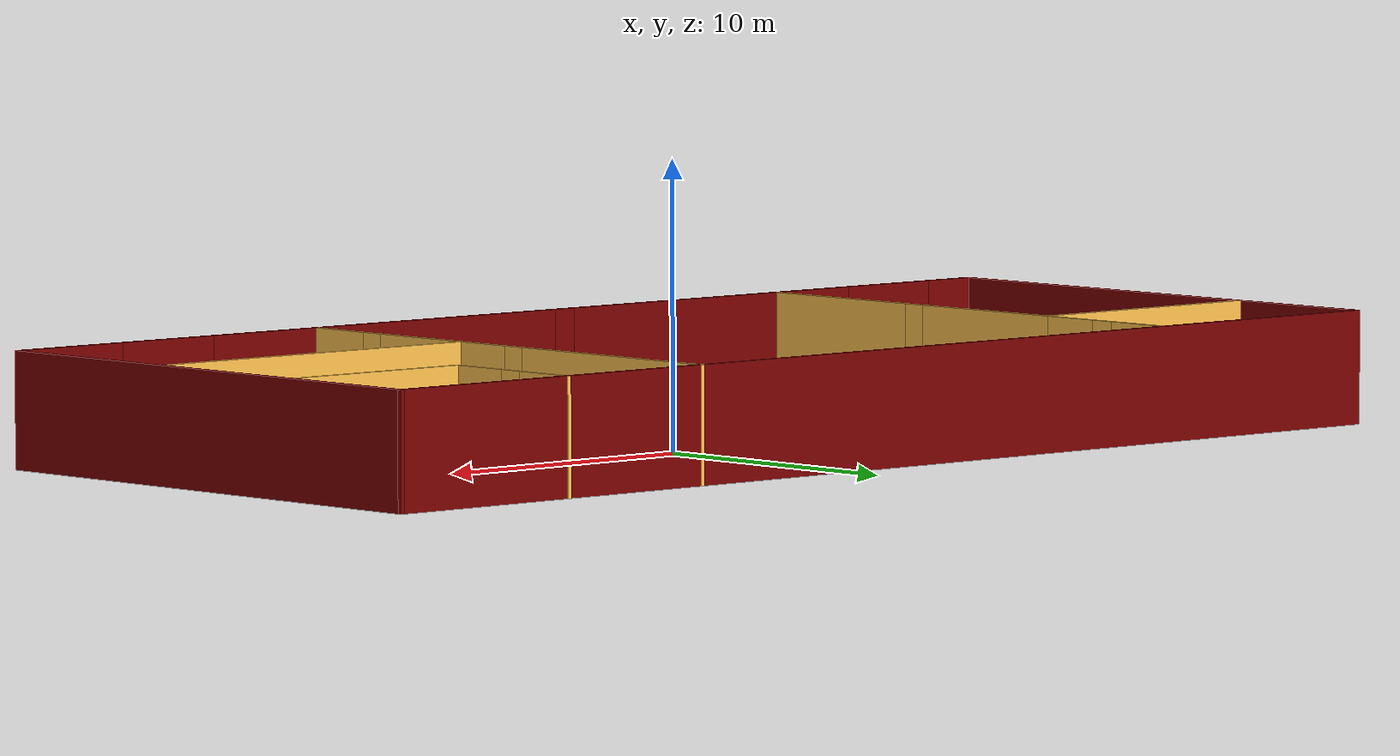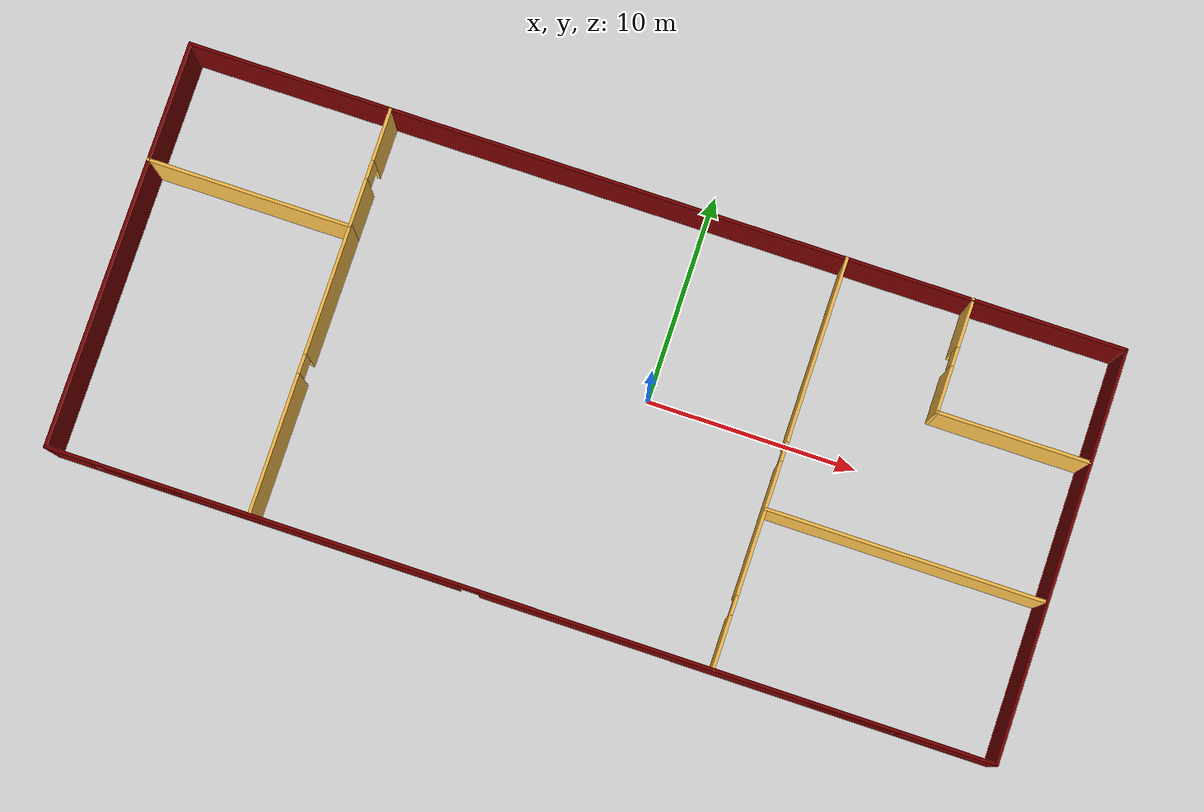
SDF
<?xml version='1.0'?>
<sdf version='1.6'>
  <model name='Building'>
    <pose frame=''>-2.517 -1.189 0 0 -0 0</pose>
    <link name='Wall_0'>
      <collision name='Wall_0_Collision'>
        <geometry>
          <box>
            <size>19.5 0.15 4</size>
          </box>
        </geometry>
        <pose frame=''>0 0 2 0 -0 0</pose>
      </collision>
      <visual name='Wall_0_Visual'>
        <pose frame=''>0 0 2 0 -0 0</pose>
        <geometry>
          <box>
            <size>19.5 0.15 4</size>
          </box>
        </geometry>
        <material>
          <script>
            <uri>file://media/materials/scripts/gazebo.material</uri>
            <name>Gazebo/Grey</name>
          </script>
          <ambient>0.478431 0 0 1</ambient>
        </material>
        <meta>
          <layer>0</layer>
        </meta>
      </visual>
      <pose frame=''>-22.173 -0.009 0 0 0 -1.5708</pose>
    </link>
    <link name='Wall_1'>
      <pose frame=''>0.001999 -9.684 0 0 -0 0</pose>
      <visual name='Wall_1_Visual_0'>
        <pose frame=''>-21.1563 0 2 0 -0 0</pose>
        <geometry>
          <box>
            <size>2.18732 0.15 4</size>
          </box>
        </geometry>
        <material>
          <script>
            <uri>file://media/materials/scripts/gazebo.material</uri>
            <name>Gazebo/Grey</name>
          </script>
          <ambient>0.478431 0 0 1</ambient>
        </material>
        <meta>
          <layer>0</layer>
        </meta>
      </visual>
      <collision name='Wall_1_Collision_0'>
        <geometry>
          <box>
            <size>2.18732 0.15 4</size>
          </box>
        </geometry>
        <pose frame=''>-21.1563 0 2 0 -0 0</pose>
      </collision>
      <visual name='Wall_1_Visual_1'>
        <pose frame=''>5.91304 0 2 0 -0 0</pose>
        <geometry>
          <box>
            <size>15.6013 0.15 4</size>
          </box>
        </geometry>
        <material>
          <script>
            <uri>file://media/materials/scripts/gazebo.material</uri>
            <name>Gazebo/Grey</name>
          </script>
          <ambient>0.478431 0 0 1</ambient>
        </material>
        <meta>
          <layer>0</layer>
        </meta>
      </visual>
      <collision name='Wall_1_Collision_1'>
        <geometry>
          <box>
            <size>15.6013 0.15 4</size>
          </box>
        </geometry>
        <pose frame=''>5.91304 0 2 0 -0 0</pose>
      </collision>
      <visual name='Wall_1_Visual_2'>
        <pose frame=''>-11.4251 0 0.25 0 -0 0</pose>
        <geometry>
          <box>
            <size>17.2751 0.15 0.5</size>
          </box>
        </geometry>
        <material>
          <script>
            <uri>file://media/materials/scripts/gazebo.material</uri>
            <name>Gazebo/Grey</name>
          </script>
          <ambient>0.478431 0 0 1</ambient>
        </material>
        <meta>
          <layer>0</layer>
        </meta>
      </visual>
      <collision name='Wall_1_Collision_2'>
        <geometry>
          <box>
            <size>17.2751 0.15 0.5</size>
          </box>
        </geometry>
        <pose frame=''>-11.4251 0 0.25 0 -0 0</pose>
      </collision>
      <visual name='Wall_1_Visual_3'>
        <pose frame=''>17.9818 0 0.25 0 -0 0</pose>
        <geometry>
          <box>
            <size>8.53632 0.15 0.5</size>
          </box>
        </geometry>
        <material>
          <script>
            <uri>file://media/materials/scripts/gazebo.material</uri>
            <name>Gazebo/Grey</name>
          </script>
          <ambient>0.478431 0 0 1</ambient>
        </material>
        <meta>
          <layer>0</layer>
        </meta>
      </visual>
      <collision name='Wall_1_Collision_3'>
        <geometry>
          <box>
            <size>8.53632 0.15 0.5</size>
          </box>
        </geometry>
        <pose frame=''>17.9818 0 0.25 0 -0 0</pose>
      </collision>
      <visual name='Wall_1_Visual_4'>
        <pose frame=''>-9.42514 0 2.25 0 -0 0</pose>
        <geometry>
          <box>
            <size>13.2751 0.15 3.5</size>
          </box>
        </geometry>
        <material>
          <script>
            <uri>file://media/materials/scripts/gazebo.material</uri>
            <name>Gazebo/Grey</name>
          </script>
          <ambient>0.478431 0 0 1</ambient>
        </material>
        <meta>
          <layer>0</layer>
        </meta>
      </visual>
      <collision name='Wall_1_Collision_4'>
        <geometry>
          <box>
            <size>13.2751 0.15 3.5</size>
          </box>
        </geometry>
        <pose frame=''>-9.42514 0 2.25 0 -0 0</pose>
      </collision>
      <visual name='Wall_1_Visual_5'>
        <pose frame=''>-9.42514 0 2.25 0 -0 0</pose>
        <geometry>
          <box>
            <size>13.2751 0.15 3.5</size>
          </box>
        </geometry>
        <material>
          <script>
            <uri>file://media/materials/scripts/gazebo.material</uri>
            <name>Gazebo/Grey</name>
          </script>
          <ambient>0.478431 0 0 1</ambient>
        </material>
        <meta>
          <layer>0</layer>
        </meta>
      </visual>
      <collision name='Wall_1_Collision_5'>
        <geometry>
          <box>
            <size>13.2751 0.15 3.5</size>
          </box>
        </geometry>
        <pose frame=''>-9.42514 0 2.25 0 -0 0</pose>
      </collision>
      <visual name='Wall_1_Visual_6'>
        <pose frame=''>19.9818 0 2.25 0 -0 0</pose>
        <geometry>
          <box>
            <size>4.53632 0.15 3.5</size>
          </box>
        </geometry>
        <material>
          <script>
            <uri>file://media/materials/scripts/gazebo.material</uri>
            <name>Gazebo/Grey</name>
          </script>
          <ambient>0.478431 0 0 1</ambient>
        </material>
        <meta>
          <layer>0</layer>
        </meta>
      </visual>
      <collision name='Wall_1_Collision_6'>
        <geometry>
          <box>
            <size>4.53632 0.15 3.5</size>
          </box>
        </geometry>
        <pose frame=''>19.9818 0 2.25 0 -0 0</pose>
      </collision>
      <visual name='Wall_1_Visual_7'>
        <pose frame=''>-2.3376 0 3 0 -0 0</pose>
        <geometry>
          <box>
            <size>0.9 0.15 2</size>
          </box>
        </geometry>
        <material>
          <script>
            <uri>file://media/materials/scripts/gazebo.material</uri>
            <name>Gazebo/Grey</name>
          </script>
          <ambient>0.478431 0 0 1</ambient>
        </material>
        <meta>
          <layer>0</layer>
        </meta>
      </visual>
      <collision name='Wall_1_Collision_7'>
        <geometry>
          <box>
            <size>0.9 0.15 2</size>
          </box>
        </geometry>
        <pose frame=''>-2.3376 0 3 0 -0 0</pose>
      </collision>
      <visual name='Wall_1_Visual_8'>
        <pose frame=''>-2.3376 0 3 0 -0 0</pose>
        <geometry>
          <box>
            <size>0.9 0.15 2</size>
          </box>
        </geometry>
        <material>
          <script>
            <uri>file://media/materials/scripts/gazebo.material</uri>
            <name>Gazebo/Grey</name>
          </script>
          <ambient>0.478431 0 0 1</ambient>
        </material>
        <meta>
          <layer>0</layer>
        </meta>
      </visual>
      <collision name='Wall_1_Collision_8'>
        <geometry>
          <box>
            <size>0.9 0.15 2</size>
          </box>
        </geometry>
        <pose frame=''>-2.3376 0 3 0 -0 0</pose>
      </collision>
      <visual name='Wall_1_Visual_9'>
        <pose frame=''>-18.0627 0 3.25 0 -0 0</pose>
        <geometry>
          <box>
            <size>4 0.15 1.5</size>
          </box>
        </geometry>
        <material>
          <script>
            <uri>file://media/materials/scripts/gazebo.material</uri>
            <name>Gazebo/Grey</name>
          </script>
          <ambient>0.478431 0 0 1</ambient>
        </material>
        <meta>
          <layer>0</layer>
        </meta>
      </visual>
      <collision name='Wall_1_Collision_9'>
        <geometry>
          <box>
            <size>4 0.15 1.5</size>
          </box>
        </geometry>
        <pose frame=''>-18.0627 0 3.25 0 -0 0</pose>
      </collision>
      <visual name='Wall_1_Visual_10'>
        <pose frame=''>15.7137 0 3.25 0 -0 0</pose>
        <geometry>
          <box>
            <size>4 0.15 1.5</size>
          </box>
        </geometry>
        <material>
          <script>
            <uri>file://media/materials/scripts/gazebo.material</uri>
            <name>Gazebo/Grey</name>
          </script>
          <ambient>0.478431 0 0 1</ambient>
        </material>
        <meta>
          <layer>0</layer>
        </meta>
      </visual>
      <collision name='Wall_1_Collision_10'>
        <geometry>
          <box>
            <size>4 0.15 1.5</size>
          </box>
        </geometry>
        <pose frame=''>15.7137 0 3.25 0 -0 0</pose>
      </collision>
    </link>
    <link name='Wall_11'>
      <pose frame=''>-12.577 6.826 0 0 -0 1.5708</pose>
      <visual name='Wall_11_Visual_0'>
        <pose frame=''>-1.70646 0 2 0 -0 0</pose>
        <geometry>
          <box>
            <size>2.33709 0.15 4</size>
          </box>
        </geometry>
        <material>
          <script>
            <uri>file://media/materials/scripts/gazebo.material</uri>
            <name>Gazebo/Grey</name>
          </script>
          <ambient>1 0.764706 0.305882 1</ambient>
        </material>
        <meta>
          <layer>0</layer>
        </meta>
      </visual>
      <collision name='Wall_11_Collision_0'>
        <geometry>
          <box>
            <size>2.33709 0.15 4</size>
          </box>
        </geometry>
        <pose frame=''>-1.70646 0 2 0 -0 0</pose>
      </collision>
      <visual name='Wall_11_Visual_1'>
        <pose frame=''>1.61854 0 2 0 -0 0</pose>
        <geometry>
          <box>
            <size>2.51292 0.15 4</size>
          </box>
        </geometry>
        <material>
          <script>
            <uri>file://media/materials/scripts/gazebo.material</uri>
            <name>Gazebo/Grey</name>
          </script>
          <ambient>1 0.764706 0.305882 1</ambient>
        </material>
        <meta>
          <layer>0</layer>
        </meta>
      </visual>
      <collision name='Wall_11_Collision_1'>
        <geometry>
          <box>
            <size>2.51292 0.15 4</size>
          </box>
        </geometry>
        <pose frame=''>1.61854 0 2 0 -0 0</pose>
      </collision>
      <visual name='Wall_11_Visual_2'>
        <pose frame=''>-0.087915 0 3 0 -0 0</pose>
        <geometry>
          <box>
            <size>0.9 0.15 2</size>
          </box>
        </geometry>
        <material>
          <script>
            <uri>file://media/materials/scripts/gazebo.material</uri>
            <name>Gazebo/Grey</name>
          </script>
          <ambient>1 0.764706 0.305882 1</ambient>
        </material>
        <meta>
          <layer>0</layer>
        </meta>
      </visual>
      <collision name='Wall_11_Collision_2'>
        <geometry>
          <box>
            <size>0.9 0.15 2</size>
          </box>
        </geometry>
        <pose frame=''>-0.087915 0 3 0 -0 0</pose>
      </collision>
    </link>
    <link name='Wall_14'>
      <pose frame=''>9.08 -0.008 0 0 0 -1.5708</pose>
      <visual name='Wall_14_Visual_0'>
        <pose frame=''>-5.35516 0 2 0 -0 0</pose>
        <geometry>
          <box>
            <size>8.78968 0.15 4</size>
          </box>
        </geometry>
        <material>
          <script>
            <uri>file://media/materials/scripts/gazebo.material</uri>
            <name>Gazebo/Grey</name>
          </script>
          <ambient>1 0.764706 0.305882 1</ambient>
        </material>
        <meta>
          <layer>0</layer>
        </meta>
      </visual>
      <collision name='Wall_14_Collision_0'>
        <geometry>
          <box>
            <size>8.78968 0.15 4</size>
          </box>
        </geometry>
        <pose frame=''>-5.35516 0 2 0 -0 0</pose>
      </collision>
      <visual name='Wall_14_Visual_1'>
        <pose frame=''>3.0945 0 2 0 -0 0</pose>
        <geometry>
          <box>
            <size>6.30964 0.15 4</size>
          </box>
        </geometry>
        <material>
          <script>
            <uri>file://media/materials/scripts/gazebo.material</uri>
            <name>Gazebo/Grey</name>
          </script>
          <ambient>1 0.764706 0.305882 1</ambient>
        </material>
        <meta>
          <layer>0</layer>
        </meta>
      </visual>
      <collision name='Wall_14_Collision_1'>
        <geometry>
          <box>
            <size>6.30964 0.15 4</size>
          </box>
        </geometry>
        <pose frame=''>3.0945 0 2 0 -0 0</pose>
      </collision>
      <visual name='Wall_14_Visual_2'>
        <pose frame=''>8.44966 0 2 0 -0 0</pose>
        <geometry>
          <box>
            <size>2.60067 0.15 4</size>
          </box>
        </geometry>
        <material>
          <script>
            <uri>file://media/materials/scripts/gazebo.material</uri>
            <name>Gazebo/Grey</name>
          </script>
          <ambient>1 0.764706 0.305882 1</ambient>
        </material>
        <meta>
          <layer>0</layer>
        </meta>
      </visual>
      <collision name='Wall_14_Collision_2'>
        <geometry>
          <box>
            <size>2.60067 0.15 4</size>
          </box>
        </geometry>
        <pose frame=''>8.44966 0 2 0 -0 0</pose>
      </collision>
      <visual name='Wall_14_Visual_3'>
        <pose frame=''>-0.510317 0 3 0 -0 0</pose>
        <geometry>
          <box>
            <size>0.9 0.15 2</size>
          </box>
        </geometry>
        <material>
          <script>
            <uri>file://media/materials/scripts/gazebo.material</uri>
            <name>Gazebo/Grey</name>
          </script>
          <ambient>1 0.764706 0.305882 1</ambient>
        </material>
        <meta>
          <layer>0</layer>
        </meta>
      </visual>
      <collision name='Wall_14_Collision_3'>
        <geometry>
          <box>
            <size>0.9 0.15 2</size>
          </box>
        </geometry>
        <pose frame=''>-0.510317 0 3 0 -0 0</pose>
      </collision>
      <visual name='Wall_14_Visual_4'>
        <pose frame=''>6.69933 0 3 0 -0 0</pose>
        <geometry>
          <box>
            <size>0.9 0.15 2</size>
          </box>
        </geometry>
        <material>
          <script>
            <uri>file://media/materials/scripts/gazebo.material</uri>
            <name>Gazebo/Grey</name>
          </script>
          <ambient>1 0.764706 0.305882 1</ambient>
        </material>
        <meta>
          <layer>0</layer>
        </meta>
      </visual>
      <collision name='Wall_14_Collision_4'>
        <geometry>
          <box>
            <size>0.9 0.15 2</size>
          </box>
        </geometry>
        <pose frame=''>6.69933 0 3 0 -0 0</pose>
      </collision>
    </link>
    <link name='Wall_17'>
      <collision name='Wall_17_Collision'>
        <geometry>
          <box>
            <size>13.15 0.15 4</size>
          </box>
        </geometry>
        <pose frame=''>0 0 2 0 -0 0</pose>
      </collision>
      <visual name='Wall_17_Visual'>
        <pose frame=''>0 0 2 0 -0 0</pose>
        <geometry>
          <box>
            <size>13.15 0.15 4</size>
          </box>
        </geometry>
        <material>
          <script>
            <uri>file://media/materials/scripts/gazebo.material</uri>
            <name>Gazebo/Grey</name>
          </script>
          <ambient>1 0.764706 0.305882 1</ambient>
        </material>
        <meta>
          <layer>0</layer>
        </meta>
      </visual>
      <pose frame=''>15.611 -2.194 0 0 -0 0</pose>
    </link>
    <link name='Wall_2'>
      <collision name='Wall_2_Collision'>
        <geometry>
          <box>
            <size>19.5 0.15 4</size>
          </box>
        </geometry>
        <pose frame=''>0 0 2 0 -0 0</pose>
      </collision>
      <visual name='Wall_2_Visual'>
        <pose frame=''>0 0 2 0 -0 0</pose>
        <geometry>
          <box>
            <size>19.5 0.15 4</size>
          </box>
        </geometry>
        <material>
          <script>
            <uri>file://media/materials/scripts/gazebo.material</uri>
            <name>Gazebo/Grey</name>
          </script>
          <ambient>0.478431 0 0 1</ambient>
        </material>
        <meta>
          <layer>0</layer>
        </meta>
      </visual>
      <pose frame=''>22.177 -0.009 0 0 -0 1.5708</pose>
    </link>
    <link name='Wall_3'>
      <collision name='Wall_3_Collision'>
        <geometry>
          <box>
            <size>44.5 0.15 4</size>
          </box>
        </geometry>
        <pose frame=''>0 0 2 0 -0 0</pose>
      </collision>
      <visual name='Wall_3_Visual'>
        <pose frame=''>0 0 2 0 -0 0</pose>
        <geometry>
          <box>
            <size>44.5 0.15 4</size>
          </box>
        </geometry>
        <material>
          <script>
            <uri>file://media/materials/scripts/gazebo.material</uri>
            <name>Gazebo/Grey</name>
          </script>
          <ambient>0.478431 0 0 1</ambient>
        </material>
        <meta>
          <layer>0</layer>
        </meta>
      </visual>
      <pose frame=''>0.001999 9.666 0 0 -0 3.14159</pose>
    </link>
    <link name='Wall_5'>
      <collision name='Wall_5_Collision'>
        <geometry>
          <box>
            <size>9.75 0.15 4</size>
          </box>
        </geometry>
        <pose frame=''>0 0 2 0 -0 0</pose>
      </collision>
      <visual name='Wall_5_Visual'>
        <pose frame=''>0 0 2 0 -0 0</pose>
        <geometry>
          <box>
            <size>9.75 0.15 4</size>
          </box>
        </geometry>
        <material>
          <script>
            <uri>file://media/materials/scripts/gazebo.material</uri>
            <name>Gazebo/Grey</name>
          </script>
          <ambient>1 0.764706 0.305882 1</ambient>
        </material>
        <meta>
          <layer>0</layer>
        </meta>
      </visual>
      <pose frame=''>-17.377 4.026 0 0 -0 0</pose>
    </link>
    <link name='Wall_6'>
      <pose frame=''>-12.577 -2.774 0 0 0 -1.5708</pose>
      <visual name='Wall_6_Visual_0'>
        <pose frame=''>-3.76615 0 2 0 -0 0</pose>
        <geometry>
          <box>
            <size>6.2177 0.15 4</size>
          </box>
        </geometry>
        <material>
          <script>
            <uri>file://media/materials/scripts/gazebo.material</uri>
            <name>Gazebo/Grey</name>
          </script>
          <ambient>1 0.764706 0.305882 1</ambient>
        </material>
        <meta>
          <layer>0</layer>
        </meta>
      </visual>
      <collision name='Wall_6_Collision_0'>
        <geometry>
          <box>
            <size>6.2177 0.15 4</size>
          </box>
        </geometry>
        <pose frame=''>-3.76615 0 2 0 -0 0</pose>
      </collision>
      <visual name='Wall_6_Visual_1'>
        <pose frame=''>3.55885 0 2 0 -0 0</pose>
        <geometry>
          <box>
            <size>6.6323 0.15 4</size>
          </box>
        </geometry>
        <material>
          <script>
            <uri>file://media/materials/scripts/gazebo.material</uri>
            <name>Gazebo/Grey</name>
          </script>
          <ambient>1 0.764706 0.305882 1</ambient>
        </material>
        <meta>
          <layer>0</layer>
        </meta>
      </visual>
      <collision name='Wall_6_Collision_1'>
        <geometry>
          <box>
            <size>6.6323 0.15 4</size>
          </box>
        </geometry>
        <pose frame=''>3.55885 0 2 0 -0 0</pose>
      </collision>
      <visual name='Wall_6_Visual_2'>
        <pose frame=''>-0.207302 0 3 0 -0 0</pose>
        <geometry>
          <box>
            <size>0.9 0.15 2</size>
          </box>
        </geometry>
        <material>
          <script>
            <uri>file://media/materials/scripts/gazebo.material</uri>
            <name>Gazebo/Grey</name>
          </script>
          <ambient>1 0.764706 0.305882 1</ambient>
        </material>
        <meta>
          <layer>0</layer>
        </meta>
      </visual>
      <collision name='Wall_6_Collision_2'>
        <geometry>
          <box>
            <size>0.9 0.15 2</size>
          </box>
        </geometry>
        <pose frame=''>-0.207302 0 3 0 -0 0</pose>
      </collision>
    </link>
    <link name='Wall_8'>
      <pose frame=''>15.006 7.009 0 0 0 -1.5708</pose>
      <visual name='Wall_8_Visual_0'>
        <pose frame=''>-1.58074 0 2 0 -0 0</pose>
        <geometry>
          <box>
            <size>2.33852 0.15 4</size>
          </box>
        </geometry>
        <material>
          <script>
            <uri>file://media/materials/scripts/gazebo.material</uri>
            <name>Gazebo/Grey</name>
          </script>
          <ambient>1 0.764706 0.305882 1</ambient>
        </material>
        <meta>
          <layer>0</layer>
        </meta>
      </visual>
      <collision name='Wall_8_Collision_0'>
        <geometry>
          <box>
            <size>2.33852 0.15 4</size>
          </box>
        </geometry>
        <pose frame=''>-1.58074 0 2 0 -0 0</pose>
      </collision>
      <visual name='Wall_8_Visual_1'>
        <pose frame=''>1.61926 0 2 0 -0 0</pose>
        <geometry>
          <box>
            <size>2.26148 0.15 4</size>
          </box>
        </geometry>
        <material>
          <script>
            <uri>file://media/materials/scripts/gazebo.material</uri>
            <name>Gazebo/Grey</name>
          </script>
          <ambient>1 0.764706 0.305882 1</ambient>
        </material>
        <meta>
          <layer>0</layer>
        </meta>
      </visual>
      <collision name='Wall_8_Collision_1'>
        <geometry>
          <box>
            <size>2.26148 0.15 4</size>
          </box>
        </geometry>
        <pose frame=''>1.61926 0 2 0 -0 0</pose>
      </collision>
      <visual name='Wall_8_Visual_2'>
        <pose frame=''>0.038517 0 3 0 -0 0</pose>
        <geometry>
          <box>
            <size>0.9 0.15 2</size>
          </box>
        </geometry>
        <material>
          <script>
            <uri>file://media/materials/scripts/gazebo.material</uri>
            <name>Gazebo/Grey</name>
          </script>
          <ambient>1 0.764706 0.305882 1</ambient>
        </material>
        <meta>
          <layer>0</layer>
        </meta>
      </visual>
      <collision name='Wall_8_Collision_2'>
        <geometry>
          <box>
            <size>0.9 0.15 2</size>
          </box>
        </geometry>
        <pose frame=''>0.038517 0 3 0 -0 0</pose>
      </collision>
    </link>
    <link name='Wall_9'>
      <collision name='Wall_9_Collision'>
        <geometry>
          <box>
            <size>7.25 0.15 4</size>
          </box>
        </geometry>
        <pose frame=''>0 0 2 0 -0 0</pose>
      </collision>
      <visual name='Wall_9_Visual'>
        <pose frame=''>0 0 2 0 -0 0</pose>
        <geometry>
          <box>
            <size>7.25 0.15 4</size>
          </box>
        </geometry>
        <material>
          <script>
            <uri>file://media/materials/scripts/gazebo.material</uri>
            <name>Gazebo/Grey</name>
          </script>
          <ambient>1 0.764706 0.305882 1</ambient>
        </material>
        <meta>
          <layer>0</layer>
        </meta>
      </visual>
      <pose frame=''>18.556 4.334 0 0 -0 0</pose>
    </link>
    <static>1</static>
  </model>
</sdf>
